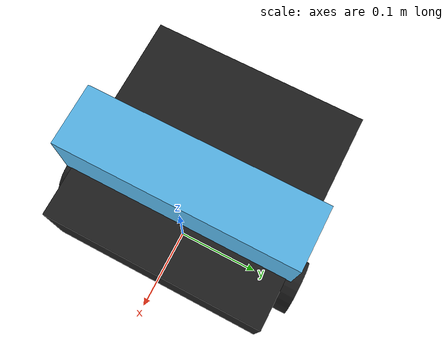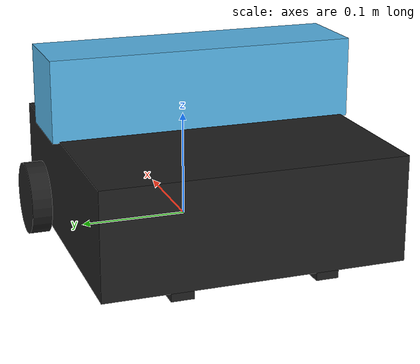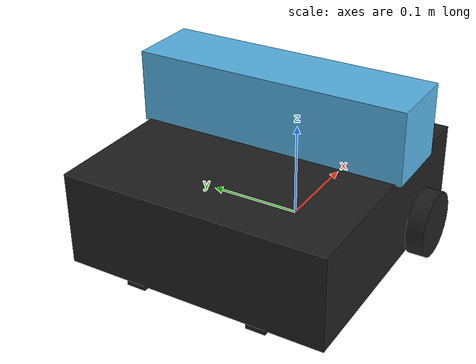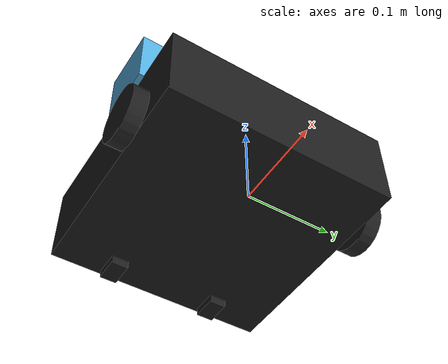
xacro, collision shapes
<?xml version="1.0" ?>

<!-- Nombre del robot: turtlebot3 -->
<robot name="turtlebot3" xmlns:xacro="http://ros.org/wiki/xacro">

  <!-- Colores de los materiales-->
  <xacro:include filename="$(find turtlebot3_description)/urdf/common_properties.xacro"/>

  <!-- Propiedades para simular con gazebo  -->
  <xacro:include filename="$(find odom_imu)/urdf/turtlebot3_kinect.gazebo.xacro"/>

  <link name="base_footprint"/>

  <joint name="base_joint" type="fixed">
    <parent link="base_footprint"/>
    <child link="base_link" />
    <origin xyz="0 0 0.010" rpy="0 0 0"/>
  </joint>

  <link name="base_link">
    <visual>
      <origin xyz="-0.064 0 0.0" rpy="0 0 0"/>
      <geometry>
        <mesh filename="package://turtlebot3_description/meshes/bases/waffle_pi_base.stl" scale="0.001 0.001 0.001"/>
      </geometry>
      <material name="light_black"/>
    </visual>

    <collision>
      <origin xyz="-0.064 0 0.047" rpy="0 0 0"/>
      <geometry>
        <box size="0.266 0.266 0.094"/>
      </geometry>
    </collision>

    <inertial>
      <origin xyz="0 0 0" rpy="0 0 0"/>
      <mass value="1.3729096e+00"/>
      <inertia ixx="8.7002718e-03" ixy="-4.7576583e-05" ixz="1.1160499e-04"
               iyy="8.6195418e-03" iyz="-3.5422299e-06"
               izz="1.4612727e-02" />
    </inertial>
  </link>

  <joint name="wheel_left_joint" type="continuous">
    <parent link="base_link"/>
    <child link="wheel_left_link"/>
    <origin xyz="0.0 0.144 0.023" rpy="-1.57 0 0"/>
    <axis xyz="0 0 1"/>
  </joint>

  <link name="wheel_left_link">
    <visual>
      <origin xyz="0 0 0" rpy="1.57 0 0"/>
      <geometry>
        <mesh filename="package://turtlebot3_description/meshes/wheels/left_tire.stl" scale="0.001 0.001 0.001"/>
      </geometry>
      <material name="dark"/>
    </visual>

    <collision>
      <origin xyz="0 0 0" rpy="0 0 0"/>
      <geometry>
        <cylinder length="0.018" radius="0.033"/>
      </geometry>
    </collision>

    <inertial>
      <origin xyz="0 0 0" />
      <mass value="2.8498940e-02" />
      <inertia ixx="1.1175580e-05" ixy="-4.2369783e-11" ixz="-5.9381719e-09"
               iyy="1.1192413e-05" iyz="-1.4400107e-11"
               izz="2.0712558e-05" />
      </inertial>
  </link>

  <joint name="wheel_right_joint" type="continuous">
    <parent link="base_link"/>
    <child link="wheel_right_link"/>
    <origin xyz="0.0 -0.144 0.023" rpy="-1.57 0 0"/>
    <axis xyz="0 0 1"/>
  </joint>

  <link name="wheel_right_link">
    <visual>
      <origin xyz="0 0 0" rpy="1.57 0 0"/>
      <geometry>
        <mesh filename="package://turtlebot3_description/meshes/wheels/right_tire.stl" scale="0.001 0.001 0.001"/>
      </geometry>
      <material name="dark"/>
    </visual>

    <collision>
      <origin xyz="0 0 0" rpy="0 0 0"/>
      <geometry>
        <cylinder length="0.018" radius="0.033"/>
      </geometry>
    </collision>

    <inertial>
      <origin xyz="0 0 0" />
      <mass value="2.8498940e-02" />
      <inertia ixx="1.1175580e-05" ixy="-4.2369783e-11" ixz="-5.9381719e-09"
               iyy="1.1192413e-05" iyz="-1.4400107e-11"
               izz="2.0712558e-05" />
      </inertial>
  </link>

  <joint name="caster_back_right_joint" type="fixed">
    <parent link="base_link"/>
    <child link="caster_back_right_link"/>
    <origin xyz="-0.177 -0.064 -0.004" rpy="-1.57 0 0"/>
  </joint>

  <link name="caster_back_right_link">
    <collision>
      <origin xyz="0 0.001 0" rpy="0 0 0"/>
      <geometry>
        <box size="0.030 0.009 0.020"/>
      </geometry>
    </collision>

    <inertial>
      <origin xyz="0 0 0" />
      <mass value="0.005" />
      <inertia ixx="0.001" ixy="0.0" ixz="0.0"
               iyy="0.001" iyz="0.0"
               izz="0.001" />
    </inertial>
  </link>

  <joint name="caster_back_left_joint" type="fixed">
    <parent link="base_link"/>
    <child link="caster_back_left_link"/>
    <origin xyz="-0.177 0.064 -0.004" rpy="-1.57 0 0"/>
  </joint>

  <link name="caster_back_left_link">
    <collision>
      <origin xyz="0 0.001 0" rpy="0 0 0"/>
      <geometry>
        <box size="0.030 0.009 0.020"/>
      </geometry>
    </collision>

    <inertial>
      <origin xyz="0 0 0" />
      <mass value="0.005" />
      <inertia ixx="0.001" ixy="0.0" ixz="0.0"
               iyy="0.001" iyz="0.0"
               izz="0.001" />
    </inertial>
  </link>

  <joint name="imu_joint" type="fixed">
    <parent link="base_link"/>
    <child link="imu_link"/>
    <origin xyz="0.0 0 0.068" rpy="0 0 0"/>
  </joint>

  <link name="imu_link"/>

<!-- Cargar los tags del kinect camera  -->
  <xacro:include filename="$(find autlab7)/urdf/kinect.urdf.xacro"/>

  <xacro:sensor_kinect parent="base_link"/>

</robot>

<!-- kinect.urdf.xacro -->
<robot name="sensor_kinect" xmlns:xacro="http://ros.org/wiki/xacro">

  <xacro:property name="cam_px" value="0.003" />
  <xacro:property name="cam_py" value="0.011" />
  <xacro:property name="cam_pz" value="0.145" />
  <xacro:property name="cam_or" value="0" />
  <xacro:property name="cam_op" value="0" />
  <xacro:property name="cam_oy" value="0" />
  <xacro:property name="kinect_cam_py" value="-0.0125"/>
  <xacro:property name="M_PI" value="3.1415926535897931" />

  <xacro:macro name="sensor_kinect" params="parent">

    <joint name="camera_rgb_joint" type="fixed">
      <origin xyz="${cam_px} ${kinect_cam_py} ${cam_pz}" rpy="${cam_or} ${cam_op} ${cam_oy}"/>
      <parent link="${parent}"/>
      <child link="camera_rgb_frame" />
    </joint>
    <link name="camera_rgb_frame"/>

    <joint name="camera_rgb_optical_joint" type="fixed">
      <origin xyz="0 0 0" rpy="${-M_PI/2} 0 ${-M_PI/2}" />
      <parent link="camera_rgb_frame" />
      <child link="camera_rgb_optical_frame" />
    </joint>
    <link name="camera_rgb_optical_frame"/>

    <joint name="camera_joint" type="fixed">
      <origin xyz="-0.031 ${-kinect_cam_py} -0.016" rpy="0 0 0"/>
      <parent link="camera_rgb_frame"/>
      <child link="camera_link"/>
    </joint>
    <link name="camera_link">
      <visual>
        <origin xyz="0 0 0" rpy="0 0 ${M_PI/2}"/>
        <geometry>
          <mesh filename="package://autlab7/urdf/meshes/kinect.dae"/>
        </geometry>
      </visual>
      <collision>
        <origin xyz="0.0 0.0 0.0" rpy="0 0 0"/>
  	<geometry>
  	  <box size="0.07271 0.27794 0.073"/>
  	</geometry>
      </collision>
      <inertial>
        <mass value="0.564" />
        <origin xyz="0 0 0" />
        <inertia ixx="0.003881243" ixy="0.0" ixz="0.0"
                 iyy="0.000498940" iyz="0.0"
                 izz="0.003879257" />
      </inertial>
    </link>

    <!-- The fixed joints & links below are usually published by static_transformers launched by the OpenNi launch
         files. However, for Gazebo simulation we need them, so we add them here.
    -->
    <joint name="camera_depth_joint" type="fixed">
      <origin xyz="0 ${2 * -kinect_cam_py} 0" rpy="0 0 0" />
      <parent link="camera_rgb_frame" />
      <child link="camera_depth_frame" />
    </joint>
    <link name="camera_depth_frame"/>

    <joint name="camera_depth_optical_joint" type="fixed">
      <origin xyz="0 0 0" rpy="${-M_PI/2} 0 ${-M_PI/2}" />
      <parent link="camera_depth_frame" />
      <child link="camera_depth_optical_frame" />
    </joint>
    <link name="camera_depth_optical_frame"/>

  </xacro:macro>
</robot>
